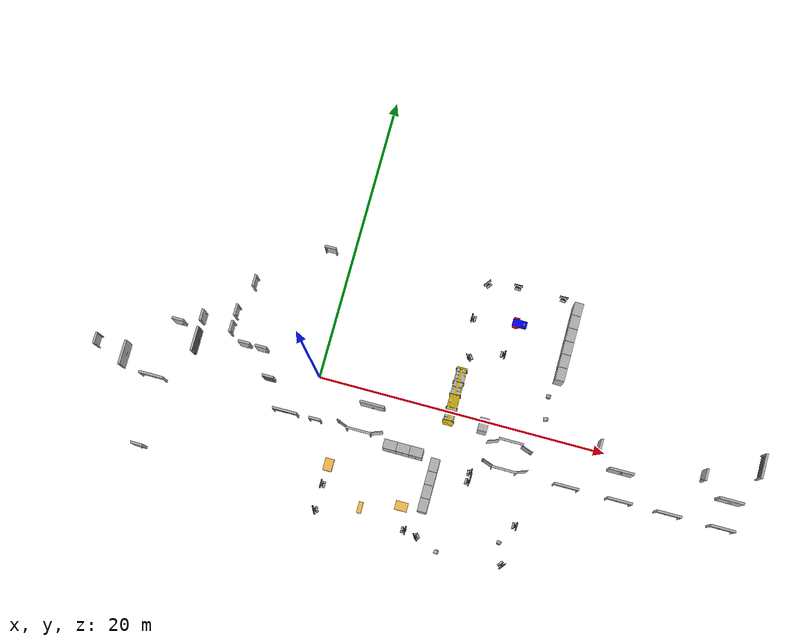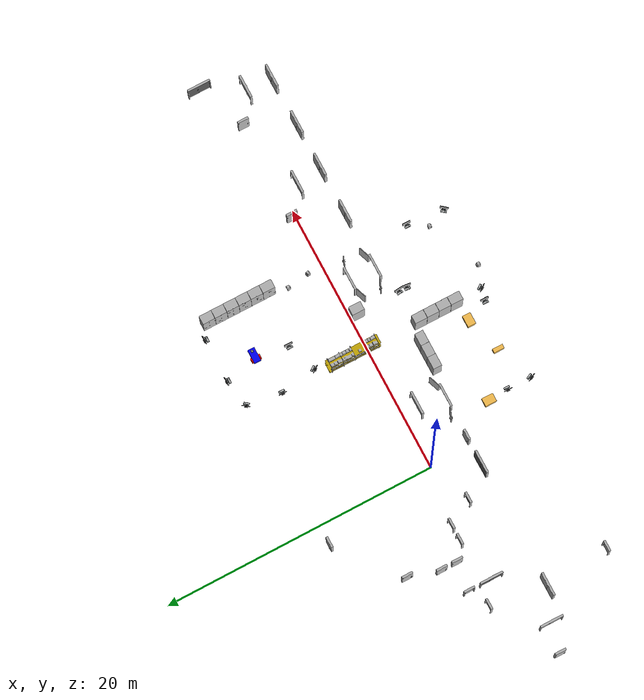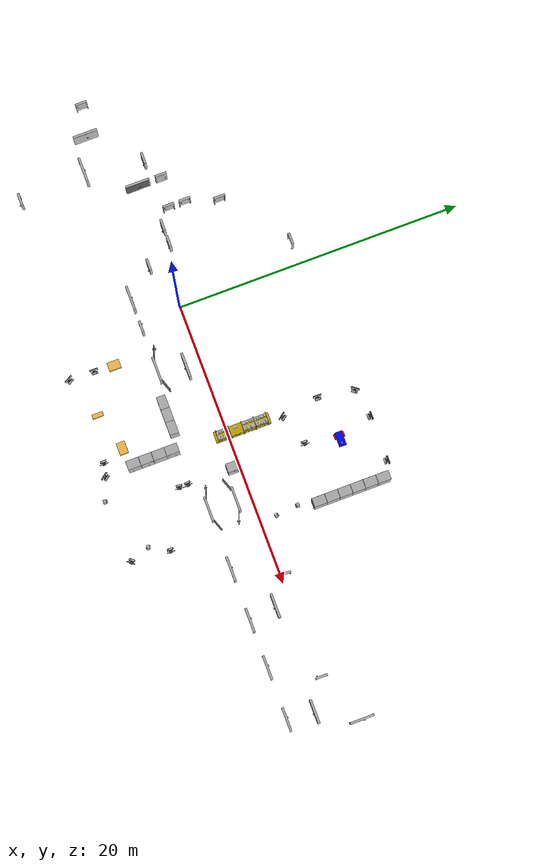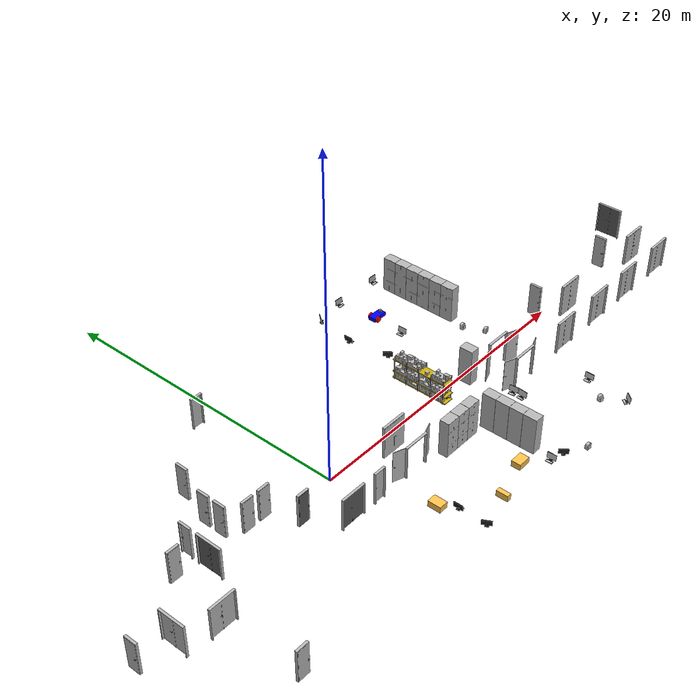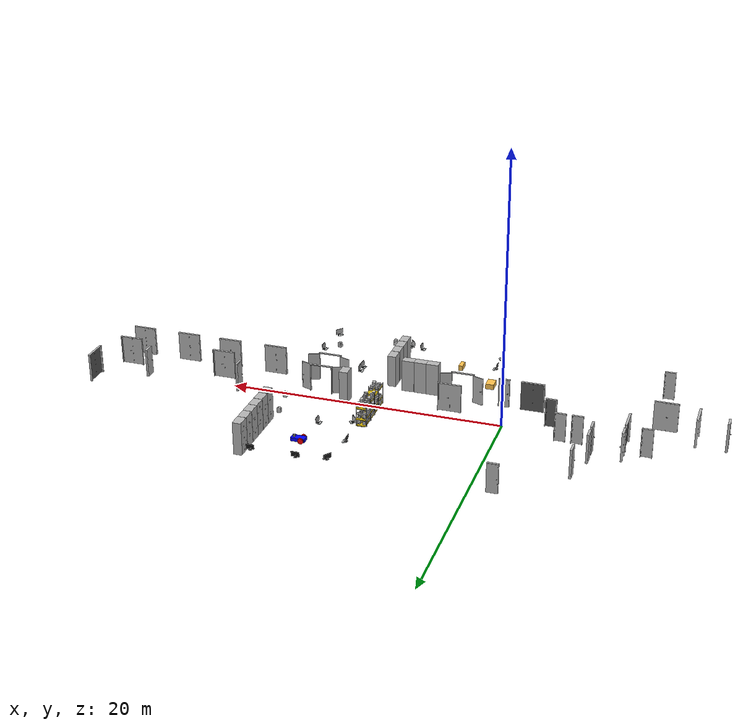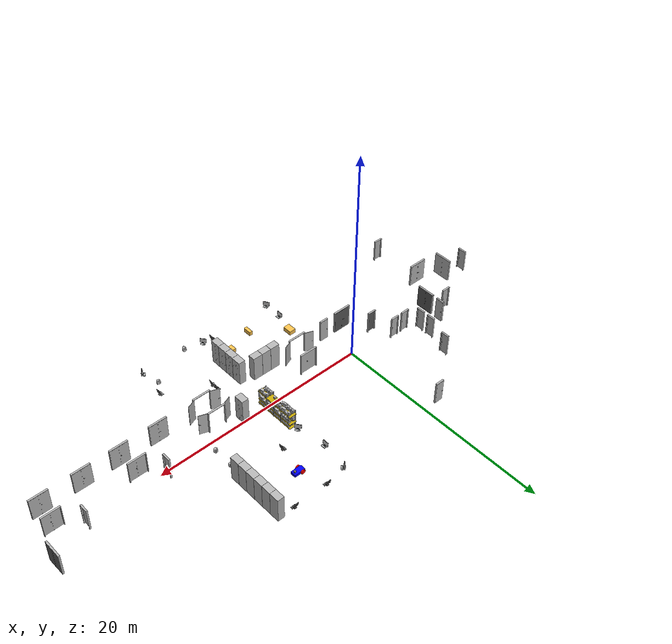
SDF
<sdf version="1.6">
 <world name="default">
  <gravity>0 0 -9.8</gravity>
  <physics default="0" name="default_physics" type="ode">
   <max_step_size>0.001</max_step_size>
   <real_time_factor>1</real_time_factor>
   <real_time_update_rate>1000</real_time_update_rate>
  </physics>
  <plugin filename="gz-sim-physics-system" name="gz::sim::systems::Physics"/>
  <plugin filename="gz-sim-user-commands-system" name="gz::sim::systems::UserCommands"/>
  <plugin filename="gz-sim-scene-broadcaster-system" name="gz::sim::systems::SceneBroadcaster"/>
  <plugin filename="gz-sim-imu-system" name="gz::sim::systems::Imu"/>
  <plugin filename="gz-sim-sensors-system" name="gz::sim::systems::Sensors">
   <render_engine>ogre2</render_engine>
  </plugin>
  <plugin filename="gz-sim-contact-system" name="gz::sim::systems::Contact"/>
  <model name="door_70_close_13">
   <include><uri>model://models/door_70_close</uri></include>
   <pose>-5.878 5.014 0 0 0 -1.5708</pose>
  </model>
  <model name="door_70_close_04">
   <include><uri>model://models/door_70_close</uri></include>
   <pose>-1.51 8.538 0 0 0 3.14159</pose>
  </model>
  <model name="door_160_close_01">
   <include><uri>model://models/door_160_close</uri></include>
   <pose>4.058 -1.04 0 0 0 3.14159</pose>
  </model>
  <model name="door_160_fully_open_01">
   <include><uri>model://models/door_160_fully_open</uri></include>
   <pose>13.673 -1.04 0 0 0 3.14159</pose>
  </model>
  <model name="box_shelf_01">
   <include><uri>model://models/box_shelf</uri></include>
   <pose>9.25 1.05 0 0 0 -1.5708</pose>
  </model>
  <model name="monitor_keyboard_02">
   <include><uri>model://models/monitor_keyboard</uri></include>
   <pose>9.400 9.11 0.76 0 0 2.5026</pose>
  </model>
  <model name="monitor_keyboard_01">
   <include><uri>model://models/monitor_keyboard</uri></include>
   <pose>9.000 6.5085 0.76 0 0 3.14159</pose>
  </model>
  <model name="monitor_keyboard_03">
   <include><uri>model://models/monitor_keyboard</uri></include>
   <pose>11.497 9.500 0.76 0 0 1.5708</pose>
  </model>
  <model name="monitor_keyboard_04">
   <include><uri>model://models/monitor_keyboard</uri></include>
   <pose>14.7 9.500 0.76 0 0 1.5708</pose>
  </model>
  <model name="storage_90_01">
   <include><uri>model://models/storage_90</uri></include>
   <pose>15.76 8.7 0 0 0 -1.5708</pose>
  </model>
  <model name="storage_90_02">
   <include><uri>model://models/storage_90</uri></include>
   <pose>15.76 7.79 0 0 0 -1.5708</pose>
  </model>
  <model name="storage_90_03">
   <include><uri>model://models/storage_90</uri></include>
   <pose>15.76 6.88 0 0 0 -1.5708</pose>
  </model>
  <model name="storage_90_04">
   <include><uri>model://models/storage_90</uri></include>
   <pose>15.76 5.97 0 0 0 -1.5708</pose>
  </model>
  <model name="storage_90_05">
   <include><uri>model://models/storage_90</uri></include>
   <pose>15.76 5.06 0 0 0 -1.5708</pose>
  </model>
  <model name="storage_90_07">
   <include><uri>model://models/storage_90</uri></include>
   <pose>15.76 4.15 0 0 0 -1.5708</pose>
  </model>
  <model name="backpack_red_01">
   <include><uri>model://models/backpack_red</uri></include>
   <pose>15.57 1.165 0.4 0 0 3.4</pose>
  </model>
  <model name="backpack_green_01">
   <include><uri>model://models/backpack_green</uri></include>
   <pose>15.4 2.74 0 0 0 0</pose>
  </model>
  <model name="storage_90_06">
   <include><uri>model://models/storage_90</uri></include>
   <pose>11.60 -0.455 0 0 0 1.5708</pose>
  </model>
  <model name="monitor_keyboard_06">
   <include><uri>model://models/monitor_keyboard</uri></include>
   <pose>9.45 3.8 0.76 0 0 3.8</pose>
  </model>
  <model name="monitor_keyboard_05">
   <include><uri>model://models/monitor_keyboard</uri></include>
   <pose>11.8 4.65  0.76 0 0 0</pose>
  </model>
  <model name="door_160_close_02">
   <include><uri>model://models/door_160_close</uri></include>
   <pose>21.273 -1.04 0 0 0 3.14159</pose>
  </model>
  <model name="door_70_close_05">
   <include><uri>model://models/door_70_close</uri></include>
   <pose>19.51 0.3 0 0 0 -1.5708</pose>
  </model>
  <model name="door_160_close_03">
   <include><uri>model://models/door_160_close</uri></include>
   <pose>28.770 -1.04 0 0 0 3.14159</pose>
  </model>
  <model name="door_160_metal_close_03">
   <include><uri>model://models/door_160_metal_close</uri></include>
   <pose>30.32 1.738 0 0 0 -1.5708</pose>
  </model>
  <model name="door_70_close_06">
   <include><uri>model://models/door_70_close</uri></include>
   <pose>26.76 0.21 0 0 0 -1.5708</pose>
  </model>
  <model name="door_160_close_04">
   <include><uri>model://models/door_160_close</uri></include>
   <pose>28.620 -2.975 0 0 0 0</pose>
  </model>
  <model name="door_160_close_05">
   <include><uri>model://models/door_160_close</uri></include>
   <pose>24.96 -2.975 0 0 0 0</pose>
  </model>
  <model name="door_160_close_06">
   <include><uri>model://models/door_160_close</uri></include>
   <pose>21.601 -2.975 0 0 0 0</pose>
  </model>
  <model name="door_160_close_07">
   <include><uri>model://models/door_160_close</uri></include>
   <pose>17.955 -2.975 0 0 0 0</pose>
  </model>
  <model name="door_160_fully_open_02">
   <include><uri>model://models/door_160_fully_open</uri></include>
   <pose>13.673 -2.975 0 0 0 0</pose>
  </model>
  <model name="monitor_keyboard_07">
   <include><uri>model://models/monitor_keyboard</uri></include>
   <pose>15.45 -6.32 0.76 0 0 0</pose>
  </model>
  <model name="backpack_red_02">
   <include><uri>model://models/backpack_red</uri></include>
   <pose>14.6 -7.67 0.45 0 0 -0.255</pose>
  </model>
  <model name="monitor_keyboard_08">
   <include><uri>model://models/monitor_keyboard</uri></include>
   <pose>15.2 -9.1 0.76 0 0 -0.69</pose>
  </model>
  <model name="backpack_green_02">
   <include><uri>model://models/backpack_green</uri></include>
   <pose>10.7 -9.32 0.45 0 0 3.1</pose>
  </model>
  <model name="monitor_keyboard_09">
   <include><uri>model://models/monitor_keyboard</uri></include>
   <pose>9.1 -8.78 0.76 0 0 3.8</pose>
  </model>
  <model name="storage_90_08">
   <include><uri>model://models/storage_90</uri></include>
   <pose>9.11 -3.915 0 0 0 1.5708</pose>
  </model>
  <model name="storage_90_09">
   <include><uri>model://models/storage_90</uri></include>
   <pose>9.11 -4.825 0 0 0 1.5708</pose>
  </model>
  <model name="storage_90_10">
   <include><uri>model://models/storage_90</uri></include>
   <pose>9.11 -5.735 0 0 0 1.5708</pose>
  </model>
  <model name="storage_90_11">
   <include><uri>model://models/storage_90</uri></include>
   <pose>9.11 -6.645 0 0 0 1.5708</pose>
  </model>
  <model name="monitor_keyboard_10">
   <include><uri>model://models/monitor_keyboard</uri></include>
   <pose>11.65 -3.68 0.76 0 0 0.1</pose>
  </model>
  <model name="monitor_keyboard_11">
   <include><uri>model://models/monitor_keyboard</uri></include>
   <pose>11.65 -4.3 0.76 0 0 -0.1</pose>
  </model>
  <model name="door_160_fully_open_03">
   <include><uri>model://models/door_160_fully_open</uri></include>
   <pose>3.63 -2.975 0 0 0 0</pose>
  </model>
  <model name="monitor_keyboard_13">
   <include><uri>model://models/monitor_keyboard</uri></include>
   <pose>2.102 -8.8 0.76 0 0 3.64159</pose>
  </model>
  <model name="monitor_keyboard_14">
   <include><uri>model://models/monitor_keyboard</uri></include>
   <pose>8.35 -8.5 0.76 0 0 0</pose>
  </model>
  <model name="Box_33x15_02">
   <include><uri>model://models/Box_33x15</uri></include>
   <pose>7.67 -7 0 0 0 0</pose>
  </model>
  <model name="Box_15x30_01">
   <include><uri>model://models/Box_15x30</uri></include>
   <pose>5.0 -7.8 0 0 0 0</pose>
  </model>
  <model name="monitor_keyboard_12">
   <include><uri>model://models/monitor_keyboard</uri></include>
   <pose>2.102 -6.988 0.76 0 0 3.14159</pose>
  </model>
  <model name="Box_33x15_01">
   <include><uri>model://models/Box_33x15</uri></include>
   <pose>2.192 -5.587 0 0 0 1.5708</pose>
  </model>
  <model name="storage_90_12">
   <include><uri>model://models/storage_90</uri></include>
   <pose>5.942 -3.38 0 0 0 0</pose>
  </model>
  <model name="storage_90_13">
   <include><uri>model://models/storage_90</uri></include>
   <pose>6.846 -3.38 0 0 0 0</pose>
  </model>
  <model name="storage_90_14">
   <include><uri>model://models/storage_90</uri></include>
   <pose>7.75 -3.38 0 0 0 0</pose>
  </model>
  <model name="door_70_close_01">
   <include><uri>model://models/door_70_close</uri></include>
   <pose>0.590 -2.975 0 0 0 3.14159</pose>
  </model>
  <model name="door_160_metal_close_01">
   <include><uri>model://models/door_160_metal_close</uri></include>
   <pose>-1.484 -2.975 0 0 0 0</pose>
  </model>
  <model name="door_160_close_08">
   <include><uri>model://models/door_160_close</uri></include>
   <pose>-10.807 -2.975 0 0 0 0</pose>
  </model>
  <model name="door_70_close_07">
   <include><uri>model://models/door_70_close</uri></include>
   <pose>-10.4 -7.646 0 0 0 0</pose>
  </model>
  <model name="door_160_close_09">
   <include><uri>model://models/door_160_close</uri></include>
   <pose>-13.095 -2.0065 0 0 0 -1.5708</pose>
  </model>
  <model name="door_70_close_08">
   <include><uri>model://models/door_70_close</uri></include>
   <pose>-15.14 -1.55 0 0 0 -1.5708</pose>
  </model>
  <model name="door_160_metal_close_02">
   <include><uri>model://models/door_160_metal_close</uri></include>
   <pose>-8.672 0.145 0 0 0 -1.5708</pose>
  </model>
  <model name="door_70_close_02">
   <include><uri>model://models/door_70_close</uri></include>
   <pose>-8.672 1.82 0 0 0 1.5708</pose>
  </model>
  <model name="door_70_close_09">
   <include><uri>model://models/door_70_close</uri></include>
   <pose>-10.14 1.125 0 0 0 0</pose>
  </model>
  <model name="door_70_close_10">
   <include><uri>model://models/door_70_close</uri></include>
   <pose>-6.53 2.75 0 0 0 -1.5708</pose>
  </model>
  <model name="door_70_close_03">
   <include><uri>model://models/door_70_close</uri></include>
   <pose>-6.53 1.592 0 0 0 -1.5708</pose>
  </model>
  <model name="door_70_close_11">
   <include><uri>model://models/door_70_close</uri></include>
   <pose>-5.39 0.77 0 0 0 0</pose>
  </model>
  <model name="door_70_close_12">
   <include><uri>model://models/door_70_close</uri></include>
   <pose>-4.21 0.77 0 0 0 0</pose>
  </model>
  <model name="door_70_metal_close">
   <include><uri>model://models/door_70_metal_close</uri></include>
   <pose>-3.2 -1.04 0 0 0 0</pose>
  </model>
  <model name="vehicle_blue" canonical_link="chassis">
   <pose relative_to="world">12 7 0.5 0 0 0</pose>
   <frame name="lidar_frame" attached_to="chassis"><pose>0.4 0 0.25 0 0 0</pose></frame>
   <link name="chassis">
    <pose relative_to="__model__">0.25 0 0.2 0 0 0</pose>
    <inertial>
     <mass>0.2859875</mass>
     <inertia>
      <ixx>0.0157705</ixx>
      <ixy>0</ixy>
      <ixz>0</ixz>
      <iyy>0.0521895</iyy>
      <iyz>0</iyz>
      <izz>0.0602535</izz>
     </inertia>
    </inertial>
    <visual name="visual">
     <geometry><box><size>1.0 0.5 0.25</size></box></geometry>
     <material>
      <ambient>0.0 0.0 1.0 1</ambient>
      <diffuse>0.0 0.0 1.0 1</diffuse>
      <specular>0.0 0.0 1.0 1</specular>
     </material>
    </visual>
    <collision name="collision"><geometry><box><size>1.0 0.5 0.25</size></box></geometry></collision>
    <sensor name="imu_sensor" type="imu">
     <always_on>1</always_on>
     <update_rate>1</update_rate>
     <visualize>true</visualize>
     <topic>imu</topic>
    </sensor>
    <sensor name="gpu_lidar" type="gpu_lidar">
     <pose relative_to="lidar_frame">0 0 0 0 0 0</pose>
     <topic>lidar</topic>
     <update_rate>10</update_rate>
     <lidar>
      <scan>
       <horizontal>
        <samples>640</samples>
        <resolution>1</resolution>
        <min_angle>-1.396263</min_angle>
        <max_angle>1.396263</max_angle>
       </horizontal>
       <vertical>
        <samples>1</samples>
        <resolution>1</resolution>
        <min_angle>0.0</min_angle>
        <max_angle>0.0</max_angle>
       </vertical>
      </scan>
      <range><min>0.08</min><max>10.0</max><resolution>0.01</resolution></range>
     </lidar>
    </sensor>
   </link>
   <frame name="box_frame" attached_to="chassis"><pose>0.3 0 0.2 0 0 0</pose></frame>
   <link name="cube">
    <pose relative_to="box_frame"/>
    <inertial>
     <mass>0.1</mass>
     <inertia><ixx>0.000166667</ixx><iyy>0.000166667</iyy><izz>0.000166667</izz></inertia>
    </inertial>
    <collision name="collision"><geometry><box><size>0.1 0.1 0.1</size></box></geometry></collision>
    <visual name="visual">
     <geometry><box><size>0.15 0.15 0.15</size></box></geometry>
     <material>
      <ambient>0.5 0.5 0.5 1</ambient>
      <diffuse>0.5 0.5 0.5 1</diffuse>
      <specular>0.5 0.5 0.5 1</specular>
     </material>
    </visual>
   </link>
   <link name="left_wheel">
    <pose relative_to="chassis">-0.25 0.3 0 -1.5707 0 0</pose>
    <inertial>
     <mass>1</mass>
     <inertia>
      <ixx>0.03645825</ixx>
      <ixy>0</ixy>
      <ixz>0</ixz>
      <iyy>0.03645825</iyy>
      <iyz>0</iyz>
      <izz>0.03125</izz>
     </inertia>
    </inertial>
    <visual name="visual">
     <geometry><cylinder><radius>0.2</radius><length>0.1</length></cylinder></geometry>
     <material>
      <ambient>1.0 0.0 0.0 1</ambient>
      <diffuse>1.0 0.0 0.0 1</diffuse>
      <specular>1.0 0.0 0.0 1</specular>
     </material>
    </visual>
    <collision name="collision">
     <geometry><cylinder><radius>0.2</radius><length>0.1</length></cylinder></geometry>
    </collision>
   </link>
   <link name="right_wheel">
    <pose relative_to="chassis">-0.25 -0.3 0 -1.5707 0 0</pose>
    <inertial>
     <mass>0.5</mass>
     <inertia>
      <ixx>0.03645825</ixx>
      <ixy>0</ixy>
      <ixz>0</ixz>
      <iyy>0.03645825</iyy>
      <iyz>0</iyz>
      <izz>0.03125</izz>
     </inertia>
    </inertial>
    <visual name="visual">
     <geometry><cylinder><radius>0.2</radius><length>0.1</length></cylinder></geometry>
     <material>
      <ambient>1.0 0.0 0.0 1</ambient>
      <diffuse>1.0 0.0 0.0 1</diffuse>
      <specular>1.0 0.0 0.0 1</specular>
     </material>
    </visual>
    <collision name="collision">
     <geometry><cylinder><radius>0.2</radius><length>0.1</length></cylinder></geometry>
    </collision>
   </link>
   <frame name="caster_frame" attached_to="chassis"><pose>0.4 0 -0.1 0 0 0</pose></frame>
   <link name="caster">
    <pose relative_to="caster_frame"/>
    <inertial>
     <mass>0.5</mass>
     <inertia><ixx>0.0125</ixx><ixy>0</ixy><ixz>0</ixz><iyy>0.0125</iyy><iyz>0</iyz><izz>0.0125</izz></inertia>
    </inertial>
    <visual name="visual">
     <geometry><sphere><radius>0.1</radius></sphere></geometry>
     <material>
      <ambient>0.0 1 0.0 1</ambient>
      <diffuse>0.0 1 0.0 1</diffuse>
      <specular>0.0 1 0.0 1</specular>
     </material>
    </visual>
    <collision name="collision"><geometry><sphere><radius>0.1</radius></sphere></geometry></collision>
   </link>
   <joint name="cube_joint" type="fixed"><parent>chassis</parent><child>cube</child></joint>
   <joint name="left_wheel_joint" type="revolute">
    <pose relative_to="left_wheel"/>
    <parent>chassis</parent>
    <child>left_wheel</child>
    <axis>
     <xyz expressed_in="__model__">0 1 0</xyz>
     <limit><lower>-1.79769e+308</lower><upper>1.79769e+308</upper></limit>
    </axis>
   </joint>
   <joint name="right_wheel_joint" type="revolute">
    <pose relative_to="right_wheel"/>
    <parent>chassis</parent>
    <child>right_wheel</child>
    <axis>
     <xyz expressed_in="__model__">0 1 0</xyz>
     <limit><lower>-1.79769e+308</lower><upper>1.79769e+308</upper></limit>
    </axis>
   </joint>
   <joint name="caster_wheel" type="ball"><parent>chassis</parent><child>caster</child></joint>
   <plugin filename="gz-sim-diff-drive-system" name="gz::sim::systems::DiffDrive">
    <left_joint>left_wheel_joint</left_joint>
    <right_joint>right_wheel_joint</right_joint>
    <wheel_separation>0.6</wheel_separation>
    <wheel_radius>0.2</wheel_radius>
    <odom_publish_frequency>1</odom_publish_frequency>
    <topic>cmd_vel</topic>
   </plugin>
  </model>
  <plugin filename="gz-sim-triggered-publisher-system" name="gz::sim::systems::TriggeredPublisher">
   <input type="gz.msgs.Int32" topic="/keyboard/keypress"><match field="data">16777234</match></input>
   <output type="gz.msgs.Twist" topic="/cmd_vel">linear: {x: 0.0}, angular: {z: 0.5}</output>
  </plugin>
  <plugin filename="gz-sim-triggered-publisher-system" name="gz::sim::systems::TriggeredPublisher">
   <input type="gz.msgs.Int32" topic="/keyboard/keypress"><match field="data">16777235</match></input>
   <output type="gz.msgs.Twist" topic="/cmd_vel">linear: {x: 0.5}, angular: {z: 0.0}</output>
  </plugin>
  <plugin filename="gz-sim-triggered-publisher-system" name="gz::sim::systems::TriggeredPublisher">
   <input type="gz.msgs.Int32" topic="/keyboard/keypress"><match field="data">16777236</match></input>
   <output type="gz.msgs.Twist" topic="/cmd_vel">linear: {x: 0.0}, angular: {z: -0.5}</output>
  </plugin>
  <plugin filename="gz-sim-triggered-publisher-system" name="gz::sim::systems::TriggeredPublisher">
   <input type="gz.msgs.Int32" topic="/keyboard/keypress"><match field="data">16777237</match></input>
   <output type="gz.msgs.Twist" topic="/cmd_vel">linear: {x: -0.5}, angular: {z: 0.0}</output>
  </plugin>
  <plugin filename="gz-sim-triggered-publisher-system" name="gz::sim::systems::TriggeredPublisher">
   <input type="gz.msgs.Int32" topic="/keyboard/keypress"><match field="data">16777249</match></input>
   <output type="gz.msgs.Twist" topic="/cmd_vel">linear: {x: 0}, angular: {z: 0}</output>
  </plugin>
  <plugin filename="gz-sim-triggered-publisher-system" name="gz::sim::systems::TriggeredPublisher">
   <input type="gz.msgs.Boolean" topic="/wall/touched"><match>data: true</match></input>
   <output type="gz.msgs.Twist" topic="/cmd_vel">linear: {x: 0.0}, angular: {z: 0.0}</output>
  </plugin>
  <plugin filename="gz-sim-triggered-publisher-system" name="gz::sim::systems::TriggeredPublisher">
   <input type="gz.msgs.Boolean" topic="/storage_90/touched"><match>data: true</match></input>
   <output type="gz.msgs.Twist" topic="/cmd_vel">linear: {x: 0.0}, angular: {z: 0.0}</output>
  </plugin>
  <plugin filename="gz-sim-triggered-publisher-system" name="gz::sim::systems::TriggeredPublisher">
   <input type="gz.msgs.Boolean" topic="/office_chair/touched"><match>data: true</match></input>
   <output type="gz.msgs.Twist" topic="/cmd_vel">linear: {x: 0.0}, angular: {z: 0.0}</output>
  </plugin>
  <light name="ceiling_light_01" type="point">
   <pose>11 7 3.21824 0 0 0</pose>
   <diffuse>1 1 1 1</diffuse>
   <specular>1 1 1 1</specular>
   <intensity>0.2</intensity>
   <attenuation>
    <range>10</range>
    <constant>0.3</constant>
    <linear>0.01</linear>
    <quadratic>0.001</quadratic>
   </attenuation>
   <direction>0.1 0.1 -1</direction>
  </light>
  <light name="ceiling_light_02" type="point">
   <pose>14 7 3.21824 0 0 0</pose>
   <diffuse>1 1 1 1</diffuse>
   <specular>1 1 1 1</specular>
   <intensity>0.2</intensity>
   <attenuation>
    <range>10</range>
    <constant>0.3</constant>
    <linear>0.01</linear>
    <quadratic>0.001</quadratic>
   </attenuation>
   <direction>0.1 0.1 -1</direction>
  </light>
  <light name="ceiling_light_03" type="point">
   <pose>11 2 3.21824 0 0 0</pose>
   <diffuse>1 1 1 1</diffuse>
   <specular>1 1 1 1</specular>
   <intensity>0.2</intensity>
   <attenuation>
    <range>10</range>
    <constant>0.3</constant>
    <linear>0.01</linear>
    <quadratic>0.001</quadratic>
   </attenuation>
   <direction>0.1 0.1 -1</direction>
  </light>
  <light name="ceiling_light_04" type="point">
   <pose>14 2 3.21824 0 0 0</pose>
   <diffuse>1 1 1 1</diffuse>
   <specular>1 1 1 1</specular>
   <intensity>0.2</intensity>
   <attenuation>
    <range>10</range>
    <constant>0.3</constant>
    <linear>0.01</linear>
    <quadratic>0.001</quadratic>
   </attenuation>
   <direction>0.1 0.1 -1</direction>
  </light>
  <light name="ceiling_light_05" type="point">
   <pose>12.5 -6.2 3.21824 0 0 0</pose>
   <diffuse>1 1 1 1</diffuse>
   <specular>1 1 1 1</specular>
   <intensity>0.6</intensity>
   <attenuation>
    <range>6</range>
    <constant>0.3</constant>
    <linear>0.01</linear>
    <quadratic>0.001</quadratic>
   </attenuation>
   <direction>0.1 0.1 -1</direction>
  </light>
  <light name="ceiling_light_07" type="point">
   <pose>3.2 -4.3 3.21824 0 0 0</pose>
   <diffuse>1 1 1 1</diffuse>
   <specular>1 1 1 1</specular>
   <intensity>0.2</intensity>
   <attenuation>
    <range>9</range>
    <constant>0.3</constant>
    <linear>0.01</linear>
    <quadratic>0.001</quadratic>
   </attenuation>
   <direction>0.1 0.1 -1</direction>
  </light>
  <light name="ceiling_light_08" type="point">
   <pose>3.2 -8.3 3.21824 0 0 0</pose>
   <diffuse>1 1 1 1</diffuse>
   <specular>1 1 1 1</specular>
   <intensity>0.2</intensity>
   <attenuation>
    <range>9</range>
    <constant>0.3</constant>
    <linear>0.01</linear>
    <quadratic>0.001</quadratic>
   </attenuation>
   <direction>0.1 0.1 -1</direction>
  </light>
  <light name="ceiling_light_09" type="point">
   <pose>7.2 -4.3 3.21824 0 0 0</pose>
   <diffuse>1 1 1 1</diffuse>
   <specular>1 1 1 1</specular>
   <intensity>0.2</intensity>
   <attenuation>
    <range>9</range>
    <constant>0.3</constant>
    <linear>0.01</linear>
    <quadratic>0.001</quadratic>
   </attenuation>
   <direction>0.1 0.1 -1</direction>
  </light>
  <light name="ceiling_light_10" type="point">
   <pose>7.2 -8.3 3.21824 0 0 0</pose>
   <diffuse>1 1 1 1</diffuse>
   <specular>1 1 1 1</specular>
   <intensity>0.2</intensity>
   <attenuation>
    <range>9</range>
    <constant>0.3</constant>
    <linear>0.01</linear>
    <quadratic>0.001</quadratic>
   </attenuation>
   <direction>0.1 0.1 -1</direction>
  </light>
  <light name="ceiling_light_11" type="point">
   <pose>-1.5 -6.3 3.21824 0 0 0</pose>
   <diffuse>1 1 1 1</diffuse>
   <specular>1 1 1 1</specular>
   <intensity>0.4</intensity>
   <attenuation>
    <range>10</range>
    <constant>0.3</constant>
    <linear>0.01</linear>
    <quadratic>0.001</quadratic>
   </attenuation>
   <direction>0.1 0.1 -1</direction>
  </light>
  <light name="ceiling_light_12" type="point">
   <pose>-6 -6.3 3.21824 0 0 0</pose>
   <diffuse>1 1 1 1</diffuse>
   <specular>1 1 1 1</specular>
   <intensity>0.4</intensity>
   <attenuation>
    <range>10</range>
    <constant>0.3</constant>
    <linear>0.01</linear>
    <quadratic>0.001</quadratic>
   </attenuation>
   <direction>0.1 0.1 -1</direction>
  </light>
  <light name="ceiling_light_13" type="point">
   <pose>-12.5 -6.3 3.21824 0 0 0</pose>
   <diffuse>1 1 1 1</diffuse>
   <specular>1 1 1 1</specular>
   <intensity>0.4</intensity>
   <attenuation>
    <range>10</range>
    <constant>0.3</constant>
    <linear>0.01</linear>
    <quadratic>0.001</quadratic>
   </attenuation>
   <direction>0.1 0.1 -1</direction>
  </light>
  <light name="ceiling_light_14" type="point">
   <pose>-17 -6.3 3.21824 0 0 0</pose>
   <diffuse>1 1 1 1</diffuse>
   <specular>1 1 1 1</specular>
   <intensity>0.4</intensity>
   <attenuation>
    <range>10</range>
    <constant>0.3</constant>
    <linear>0.01</linear>
    <quadratic>0.001</quadratic>
   </attenuation>
   <direction>0.1 0.1 -1</direction>
  </light>
  <light name="ceiling_light_15" type="point">
   <pose>-10.1 -8.8 3.21824 0 0 0</pose>
   <diffuse>1 1 1 1</diffuse>
   <specular>1 1 1 1</specular>
   <intensity>0.5</intensity>
   <attenuation>
    <range>5</range>
    <constant>0.3</constant>
    <linear>0.01</linear>
    <quadratic>0.001</quadratic>
   </attenuation>
   <direction>0.1 0.1 -1</direction>
  </light>
  <light name="ceiling_light_16" type="point">
   <pose>-17 -2 3.21824 0 0 0</pose>
   <diffuse>1 1 1 1</diffuse>
   <specular>1 1 1 1</specular>
   <intensity>0.5</intensity>
   <attenuation>
    <range>5</range>
    <constant>0.3</constant>
    <linear>0.01</linear>
    <quadratic>0.001</quadratic>
   </attenuation>
   <direction>0.1 0.1 -1</direction>
  </light>
  <light name="ceiling_light_17" type="point">
   <pose>-16 2 3.21824 0 0 0</pose>
   <diffuse>1 1 1 1</diffuse>
   <specular>1 1 1 1</specular>
   <intensity>0.4</intensity>
   <attenuation>
    <range>10</range>
    <constant>0.3</constant>
    <linear>0.01</linear>
    <quadratic>0.001</quadratic>
   </attenuation>
   <direction>0.1 0.1 -1</direction>
  </light>
  <light name="ceiling_light_18" type="point">
   <pose>-16 7 3.21824 0 0 0</pose>
   <diffuse>1 1 1 1</diffuse>
   <specular>1 1 1 1</specular>
   <intensity>0.4</intensity>
   <attenuation>
    <range>10</range>
    <constant>0.3</constant>
    <linear>0.01</linear>
    <quadratic>0.001</quadratic>
   </attenuation>
   <direction>0.1 0.1 -1</direction>
  </light>
  <light name="ceiling_light_19" type="point">
   <pose>-10 2 3.21824 0 0 0</pose>
   <diffuse>1 1 1 1</diffuse>
   <specular>1 1 1 1</specular>
   <intensity>0.4</intensity>
   <attenuation>
    <range>5</range>
    <constant>0.3</constant>
    <linear>0.01</linear>
    <quadratic>0.001</quadratic>
   </attenuation>
   <direction>0.1 0.1 -1</direction>
  </light>
  <light name="ceiling_light_20" type="point">
   <pose>-11 0 3.21824 0 0 0</pose>
   <diffuse>1 1 1 1</diffuse>
   <specular>1 1 1 1</specular>
   <intensity>0.4</intensity>
   <attenuation>
    <range>5</range>
    <constant>0.3</constant>
    <linear>0.01</linear>
    <quadratic>0.001</quadratic>
   </attenuation>
   <direction>0.1 0.1 -1</direction>
  </light>
  <light name="ceiling_light_21" type="point">
   <pose>-5 2.8 3.21824 0 0 0</pose>
   <diffuse>1 1 1 1</diffuse>
   <specular>1 1 1 1</specular>
   <intensity>0.4</intensity>
   <attenuation>
    <range>5</range>
    <constant>0.3</constant>
    <linear>0.01</linear>
    <quadratic>0.001</quadratic>
   </attenuation>
   <direction>0.1 0.1 -1</direction>
  </light>
  <light name="ceiling_light_22" type="point">
   <pose>-5 1.5 3.21824 0 0 0</pose>
   <diffuse>1 1 1 1</diffuse>
   <specular>1 1 1 1</specular>
   <intensity>0.4</intensity>
   <attenuation>
    <range>5</range>
    <constant>0.3</constant>
    <linear>0.01</linear>
    <quadratic>0.001</quadratic>
   </attenuation>
   <direction>0.1 0.1 -1</direction>
  </light>
  <light name="ceiling_light_23" type="point">
   <pose>-4.3 0 3.21824 0 0 0</pose>
   <diffuse>1 1 1 1</diffuse>
   <specular>1 1 1 1</specular>
   <intensity>0.4</intensity>
   <attenuation>
    <range>5</range>
    <constant>0.3</constant>
    <linear>0.01</linear>
    <quadratic>0.001</quadratic>
   </attenuation>
   <direction>0.1 0.1 -1</direction>
  </light>
  <light name="ceiling_light_24" type="point">
   <pose>-5.3 0 3.21824 0 0 0</pose>
   <diffuse>1 1 1 1</diffuse>
   <specular>1 1 1 1</specular>
   <intensity>0.4</intensity>
   <attenuation>
    <range>5</range>
    <constant>0.3</constant>
    <linear>0.01</linear>
    <quadratic>0.001</quadratic>
   </attenuation>
   <direction>0.1 0.1 -1</direction>
  </light>
  <light name="ceiling_light_25" type="point">
   <pose>-7.8 1.4 3.21824 0 0 0</pose>
   <diffuse>1 1 1 1</diffuse>
   <specular>1 1 1 1</specular>
   <intensity>0.7</intensity>
   <attenuation>
    <range>5.5</range>
    <constant>0.3</constant>
    <linear>0.01</linear>
    <quadratic>0.001</quadratic>
   </attenuation>
   <direction>0.1 0.1 -1</direction>
  </light>
  <light name="ceiling_light_26" type="point">
   <pose>-11 -2 3.21824 0 0 0</pose>
   <diffuse>1 1 1 1</diffuse>
   <specular>1 1 1 1</specular>
   <intensity>0.7</intensity>
   <attenuation>
    <range>4.1</range>
    <constant>0.3</constant>
    <linear>0.01</linear>
    <quadratic>0.001</quadratic>
   </attenuation>
   <direction>0.1 0.1 -1</direction>
  </light>
  <light name="ceiling_light_27" type="point">
   <pose>-2 -2 3.21824 0 0 0</pose>
   <diffuse>1 1 1 1</diffuse>
   <specular>1 1 1 1</specular>
   <intensity>0.7</intensity>
   <attenuation>
    <range>5.7</range>
    <constant>0.3</constant>
    <linear>0.01</linear>
    <quadratic>0.001</quadratic>
   </attenuation>
   <direction>0.1 0.1 -1</direction>
  </light>
  <light name="ceiling_light_28" type="point">
   <pose>8.6 -2 3.21824 0 0 0</pose>
   <diffuse>1 1 1 1</diffuse>
   <specular>1 1 1 1</specular>
   <intensity>0.7</intensity>
   <attenuation>
    <range>8</range>
    <constant>0.3</constant>
    <linear>0.01</linear>
    <quadratic>0.001</quadratic>
   </attenuation>
   <direction>0.1 0.1 -1</direction>
  </light>
  <light name="ceiling_light_29" type="point">
   <pose>20 -2 3.21824 0 0 0</pose>
   <diffuse>1 1 1 1</diffuse>
   <specular>1 1 1 1</specular>
   <intensity>0.7</intensity>
   <attenuation>
    <range>11</range>
    <constant>0.3</constant>
    <linear>0.01</linear>
    <quadratic>0.001</quadratic>
   </attenuation>
   <direction>0.1 0.1 -1</direction>
  </light>
  <light name="ceiling_light_30" type="point">
   <pose>25 -2 3.21824 0 0 0</pose>
   <diffuse>1 1 1 1</diffuse>
   <specular>1 1 1 1</specular>
   <intensity>0.7</intensity>
   <attenuation>
    <range>10</range>
    <constant>0.3</constant>
    <linear>0.01</linear>
    <quadratic>0.001</quadratic>
   </attenuation>
   <direction>0.1 0.1 -1</direction>
  </light>
  <light name="ceiling_light_31" type="point">
   <pose>-1 5 3.21824 0 0 0</pose>
   <diffuse>1 1 1 1</diffuse>
   <specular>1 1 1 1</specular>
   <intensity>0.7</intensity>
   <attenuation>
    <range>10</range>
    <constant>0.3</constant>
    <linear>0.01</linear>
    <quadratic>0.001</quadratic>
   </attenuation>
   <direction>0.1 0.1 -1</direction>
  </light>
  <light name="ceiling_light_32" type="point">
   <pose>-0.5 9.2 3.21824 0 0 0</pose>
   <diffuse>1 1 1 1</diffuse>
   <specular>1 1 1 1</specular>
   <intensity>0.4</intensity>
   <attenuation>
    <range>10</range>
    <constant>0.3</constant>
    <linear>0.01</linear>
    <quadratic>0.001</quadratic>
   </attenuation>
   <direction>0.1 0.1 -1</direction>
  </light>
  <light name="ceiling_light_33" type="point">
   <pose>5 5 3.21824 0 0 0</pose>
   <diffuse>1 1 1 1</diffuse>
   <specular>1 1 1 1</specular>
   <intensity>0.7</intensity>
   <attenuation>
    <range>10</range>
    <constant>0.3</constant>
    <linear>0.01</linear>
    <quadratic>0.001</quadratic>
   </attenuation>
   <direction>0.1 0.1 -1</direction>
  </light>
  <light name="ceiling_light_34" type="point">
   <pose>20 5 3.21824 0 0 0</pose>
   <diffuse>1 1 1 1</diffuse>
   <specular>1 1 1 1</specular>
   <intensity>0.7</intensity>
   <attenuation>
    <range>10</range>
    <constant>0.3</constant>
    <linear>0.01</linear>
    <quadratic>0.001</quadratic>
   </attenuation>
   <direction>0.1 0.1 -1</direction>
  </light>
  <light name="ceiling_light_35" type="point">
   <pose>18 0 3.21824 0 0 0</pose>
   <diffuse>1 1 1 1</diffuse>
   <specular>1 1 1 1</specular>
   <intensity>0.4</intensity>
   <attenuation>
    <range>10</range>
    <constant>0.3</constant>
    <linear>0.01</linear>
    <quadratic>0.001</quadratic>
   </attenuation>
   <direction>0.1 0.1 -1</direction>
  </light>
  <light name="ceiling_light_36" type="point">
   <pose>27 5 3.21824 0 0 0</pose>
   <diffuse>1 1 1 1</diffuse>
   <specular>1 1 1 1</specular>
   <intensity>0.7</intensity>
   <attenuation>
    <range>10</range>
    <constant>0.3</constant>
    <linear>0.01</linear>
    <quadratic>0.001</quadratic>
   </attenuation>
   <direction>0.1 0.1 -1</direction>
  </light>
  <light name="ceiling_light_37" type="point">
   <pose>25 0 3.21824 0 0 0</pose>
   <diffuse>1 1 1 1</diffuse>
   <specular>1 1 1 1</specular>
   <intensity>0.4</intensity>
   <attenuation>
    <range>10</range>
    <constant>0.3</constant>
    <linear>0.01</linear>
    <quadratic>0.001</quadratic>
   </attenuation>
   <direction>0.1 0.1 -1</direction>
  </light>
  <light name="ceiling_light_38" type="point">
   <pose>28.5 -6 3.21824 0 0 0</pose>
   <diffuse>1 1 1 1</diffuse>
   <specular>1 1 1 1</specular>
   <intensity>0.6</intensity>
   <attenuation>
    <range>10</range>
    <constant>0.3</constant>
    <linear>0.01</linear>
    <quadratic>0.001</quadratic>
   </attenuation>
   <direction>0.1 0.1 -1</direction>
  </light>
  <light name="ceiling_light_39" type="point">
   <pose>25 -6 3.21824 0 0 0</pose>
   <diffuse>1 1 1 1</diffuse>
   <specular>1 1 1 1</specular>
   <intensity>0.6</intensity>
   <attenuation>
    <range>10</range>
    <constant>0.3</constant>
    <linear>0.01</linear>
    <quadratic>0.001</quadratic>
   </attenuation>
   <direction>0.1 0.1 -1</direction>
  </light>
  <light name="ceiling_light_40" type="point">
   <pose>21.5 -6 3.21824 0 0 0</pose>
   <diffuse>1 1 1 1</diffuse>
   <specular>1 1 1 1</specular>
   <intensity>0.6</intensity>
   <attenuation>
    <range>10</range>
    <constant>0.3</constant>
    <linear>0.01</linear>
    <quadratic>0.001</quadratic>
   </attenuation>
   <direction>0.1 0.1 -1</direction>
  </light>
  <light name="ceiling_light_41" type="point">
   <pose>18 -6 3.21824 0 0 0</pose>
   <diffuse>1 1 1 1</diffuse>
   <specular>1 1 1 1</specular>
   <intensity>0.6</intensity>
   <attenuation>
    <range>10</range>
    <constant>0.3</constant>
    <linear>0.01</linear>
    <quadratic>0.001</quadratic>
   </attenuation>
   <direction>0.1 0.1 -1</direction>
  </light>
  <light name="ceiling_light_42" type="point">
   <pose>-7.6 8 3.21824 0 0 0</pose>
   <diffuse>1 1 1 1</diffuse>
   <specular>1 1 1 1</specular>
   <intensity>0.6</intensity>
   <attenuation>
    <range>10</range>
    <constant>0.3</constant>
    <linear>0.01</linear>
    <quadratic>0.001</quadratic>
   </attenuation>
   <direction>0.1 0.1 -1</direction>
  </light>
  <light name="ceiling_light_43" type="point">
   <pose>-11 8 3.21824 0 0 0</pose>
   <diffuse>1 1 1 1</diffuse>
   <specular>1 1 1 1</specular>
   <intensity>0.6</intensity>
   <attenuation>
    <range>10</range>
    <constant>0.3</constant>
    <linear>0.01</linear>
    <quadratic>0.001</quadratic>
   </attenuation>
   <direction>0.1 0.1 -1</direction>
  </light>
  <light name="ceiling_light_44" type="point">
   <pose>-4.7 4.6 3.21824 0 0 0</pose>
   <diffuse>1 1 1 1</diffuse>
   <specular>1 1 1 1</specular>
   <intensity>0.4</intensity>
   <attenuation>
    <range>10</range>
    <constant>0.3</constant>
    <linear>0.01</linear>
    <quadratic>0.001</quadratic>
   </attenuation>
   <direction>0.1 0.1 -1</direction>
  </light>
 </world>
</sdf>

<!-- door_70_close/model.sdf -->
<sdf version="1.6">
  <model name='door_70_close'>
    <static>true</static>
    <link name="body">

        <visual name="visual">
          <geometry>
            <mesh><uri>model://models/door_70_close/meshes/door_70_close.dae</uri></mesh>
          </geometry>
        </visual>

        <collision name="collision">
          <geometry>
            <mesh><uri>model://models/door_70_close/meshes/door_70_close.dae</uri></mesh>
          </geometry>
        </collision>

    </link>
  </model>
</sdf>

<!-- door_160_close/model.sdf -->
<sdf version="1.6">
  <model name='door_160_close'>
    <static>true</static>
    <link name="body">

        <visual name="visual">
          <geometry>
            <mesh><uri>model://models/door_160_close/meshes/door_160_close.dae</uri></mesh>
          </geometry>
        </visual>

        <collision name="collision">
          <geometry>
            <mesh><uri>model://models/door_160_close/meshes/door_160_close.dae</uri></mesh>
          </geometry>
        </collision>

    </link>
  </model>
</sdf>

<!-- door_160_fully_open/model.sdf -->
<sdf version="1.6">
  <model name='door_160_fully_open'>
    <static>true</static>
    <link name="body">

        <visual name="visual">
          <geometry>
            <mesh><uri>model://models/door_160_fully_open/meshes/door_160_fully_open.dae</uri></mesh>
          </geometry>
        </visual>

        <collision name="collision">
          <geometry>
            <mesh><uri>model://models/door_160_fully_open/meshes/door_160_fully_open.dae</uri></mesh>
          </geometry>
        </collision>

    </link>
  </model>
</sdf>

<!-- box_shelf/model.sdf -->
<sdf version="1.6">
  <model name='box_shelf'>
    <static>true</static>
    <link name="body">

        <visual name="visual">
          <geometry>
            <mesh><uri>model://models/box_shelf/meshes/box_shelf.dae</uri></mesh>
          </geometry>
        </visual>

        <collision name="collision">
          <geometry>
            <mesh><uri>model://models/box_shelf/meshes/box_shelf.dae</uri></mesh>
          </geometry>
        </collision>

    </link>
  </model>
</sdf>

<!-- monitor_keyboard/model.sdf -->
<sdf version="1.6">
  <model name='monitor_keyboard'>
    <static>true</static>
    <link name="body">

        <visual name="visual">
          <geometry>
            <mesh><uri>model://models/monitor_keyboard/meshes/monitor_keyboard.dae</uri></mesh>
          </geometry>
        </visual>

        <collision name="collision">
          <geometry>
            <mesh><uri>model://models/monitor_keyboard/meshes/monitor_keyboard.dae</uri></mesh>
          </geometry>
        </collision>

    </link>
  </model>
</sdf>

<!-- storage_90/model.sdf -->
<sdf version="1.6">
  <model name='storage_90'>
    <static>true</static>
    <link name="body">

        <visual name="visual">
          <geometry>
            <mesh><uri>model://models/storage_90/meshes/storage_90.dae</uri></mesh>
          </geometry>
        </visual>

        <collision name="collision">
          <geometry>
            <mesh><uri>model://models/storage_90/meshes/storage_90.dae</uri></mesh>
          </geometry>
        </collision>

    </link>
  </model>
</sdf>

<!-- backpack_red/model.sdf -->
<sdf version='1.6'>
  <model name='backpack_red'>
    <static>true</static>
    <link name='link'>
      <collision name='collision'>
        <geometry>
          <mesh>
            <uri>model://models/backpack_red/meshes/backpack.dae</uri>
          </mesh>
        </geometry>
      </collision>
      <visual name='visual'>
        <geometry>
          <mesh>
            <uri>model://models/backpack_red/meshes/backpack.dae</uri>
          </mesh>
        </geometry>
      </visual>
    </link>
  </model>
</sdf>

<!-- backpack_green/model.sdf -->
<sdf version='1.6'>
  <model name='backpack_green'>
    <static>true</static>
    <link name='link'>
      <collision name='collision'>
        <geometry>
          <mesh>
            <uri>model://models/backpack_green/meshes/backpack.dae</uri>
          </mesh>
        </geometry>
      </collision>
      <visual name='visual'>
        <geometry>
          <mesh>
            <uri>model://models/backpack_green/meshes/backpack.dae</uri>
          </mesh>
        </geometry>
      </visual>
    </link>
  </model>
</sdf>

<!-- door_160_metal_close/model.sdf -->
<sdf version="1.6">
  <model name='door_160_metal_close'>
    <static>true</static>
    <link name="body">

        <visual name="visual">
          <geometry>
            <mesh><uri>model://models/door_160_metal_close/meshes/door_160_metal_close.dae</uri></mesh>
          </geometry>
        </visual>

        <collision name="collision">
          <geometry>
            <mesh><uri>model://models/door_160_metal_close/meshes/door_160_metal_close.dae</uri></mesh>
          </geometry>
        </collision>

    </link>
  </model>
</sdf>

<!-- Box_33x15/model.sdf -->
<sdf version='1.6'>
  <model name='Box_33x15'>
    <link name='Wall'>
    <pose frame=''>0 0 0.1985 0 0 0</pose>
	<inertial>
	  <mass>5</mass>
	   <inertia>
	     <ixx>0.2157</ixx>
	     <iyy>0.3597</iyy>
	     <izz>0.4440</izz>
    	     <ixy>0</ixy>
	     <ixz>0</ixz>
	     <iyz>0</iyz>
	   </inertia>
	</inertial>
      <collision name='Wall_Collision'>
        <geometry>
          <box>
            <size>0.84 0.6 0.397 </size>
          </box>
        </geometry>
       </collision>
     <visual name='Wall_Visual'>
  <geometry>
    <box>
      <size>0.84 0.6 0.397 </size>
    </box>
  </geometry>
  <material>

    <ambient>1 0.764706 0.305882 1</ambient>
    <diffuse>1 0.764706 0.305882 1</diffuse>
    <specular>0.1 0.1 0.1 1</specular>
    <emissive>0 0 0 0</emissive>
  </material>
</visual>

     </link>

    <static>1</static>
  </model>
</sdf>

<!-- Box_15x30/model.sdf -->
<sdf version='1.6'>
  <model name='Box_15x30'>
    <link name='Wall'>
     <pose frame=''>0 0.0 0.1985 0 0 0</pose>
	<inertial>
	  <mass>5</mass>
	   <inertia>
	     <ixx>0.3089</ixx>
	     <iyy>0.1022</iyy>
	     <izz>0.2797</izz>
    	     <ixy>0</ixy>
	     <ixz>0</ixz>
	     <iyz>0</iyz>
	   </inertia>
	</inertial>
      <collision name='Wall_Collision'>
        <geometry>
          <box>
            <size>0.296 0.764 0.397</size>
          </box>
        </geometry>
      </collision>
          <visual name='Wall_Visual'>
  <geometry>
    <box>
      <size>0.296 0.764 0.397 </size>
    </box>
  </geometry>
  <material>
    <ambient>1 0.764706 0.305882 1</ambient>
    <diffuse>1 0.764706 0.305882 1</diffuse>
    <specular>0.1 0.1 0.1 1</specular>
    <emissive>0 0 0 0</emissive>
  </material>
</visual>
     </link>

    <static>1</static>
  </model>
</sdf>

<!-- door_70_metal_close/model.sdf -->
<sdf version="1.6">
  <model name='door_70_metal_close'>
    <static>true</static>
    <link name="body">

        <visual name="visual">
          <geometry>
            <mesh><uri>model://models/door_70_metal_close/meshes/door_70_metal_close.dae</uri></mesh>
          </geometry>
        </visual>

        <collision name="collision">
          <geometry>
            <mesh><uri>model://models/door_70_metal_close/meshes/door_70_metal_close.dae</uri></mesh>
          </geometry>
        </collision>

    </link>
  </model>
</sdf>
